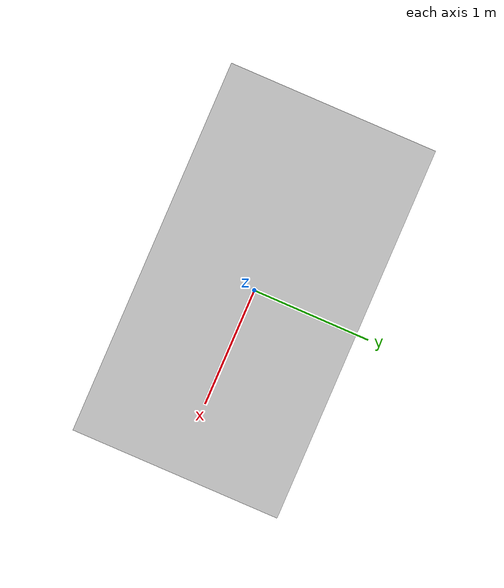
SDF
<?xml version="1.0"?>
<sdf version="1.5">
<model name="tabletennis_table">
  <static>true</static>
  <pose>0 0 0 0 0 0</pose>
    <link name="link">
      <velocity_decay>
        <linear>0</linear>
        <angular>0.001</angular>
      </velocity_decay>
      <inertial>
        <mass>100</mass>
        <inertia>
          <ixx>10</ixx>
          <ixy>0.0</ixy>
          <ixz>0.0</ixz>
          <iyy>10</iyy>
          <iyz>0.0</iyz>
          <izz>10</izz>
        </inertia>
      </inertial>
      <collision name="collision">
        <geometry>
          <mesh>
            <uri>model://table_description/models/tabletennis_table/meshes/tabletennis_table_realsize.dae</uri>
            <scale>1 1 1</scale>
          </mesh>
        </geometry>
        <surface>
          <friction>
            <ode>
              <mu>5</mu>
              <mu2>5</mu2>
            </ode>
          </friction>
          <bounce>
            <restitution_coefficient>1.0</restitution_coefficient>
            <threshold>0.0</threshold>
          </bounce>
          <contact>
            <ode>
              <kp>10000000.0</kp>
              <kd>1.0</kd>
              <min_depth>0.001</min_depth>
              <max_vel>10</max_vel>
            </ode>
          </contact>
        </surface>
      </collision>
      <visual name="visual">
        <geometry>
          <mesh>
            <uri>model://table_description/models/tabletennis_table/meshes/tabletennis_table_realsize.dae</uri>
            <scale>1 1 1</scale>
          </mesh>
        </geometry>
      </visual>
    </link>
  </model>
</sdf>
